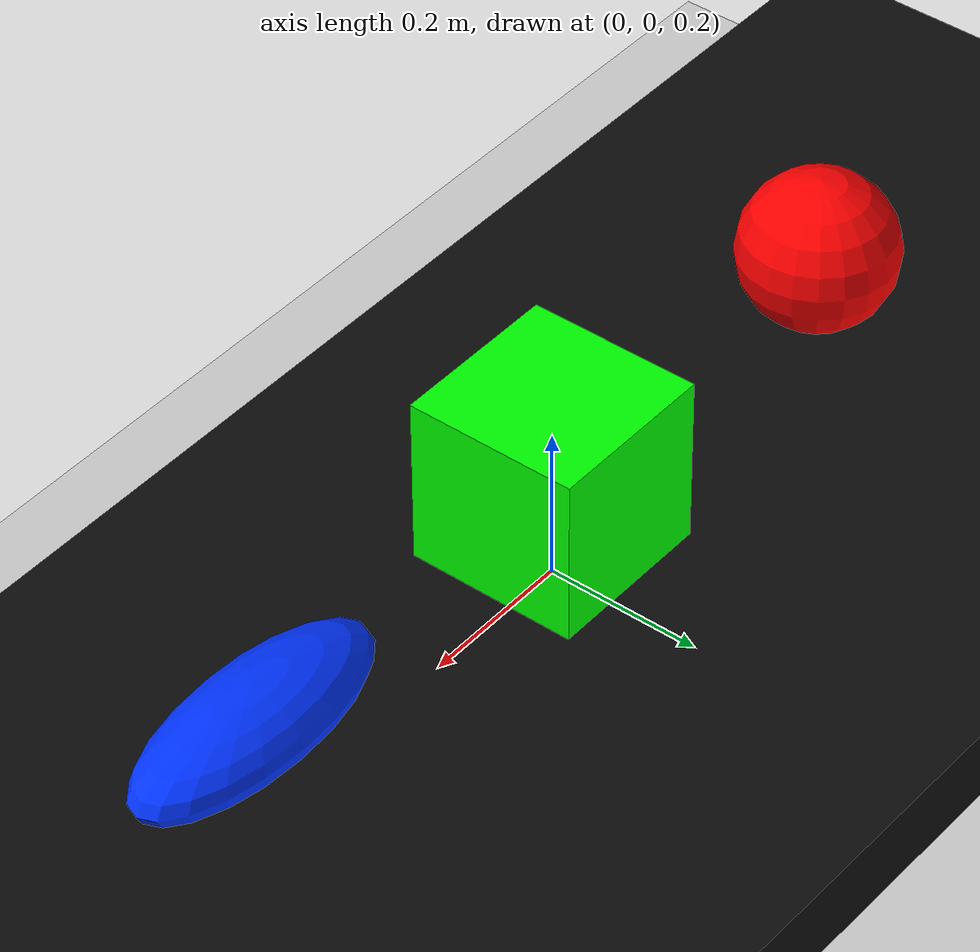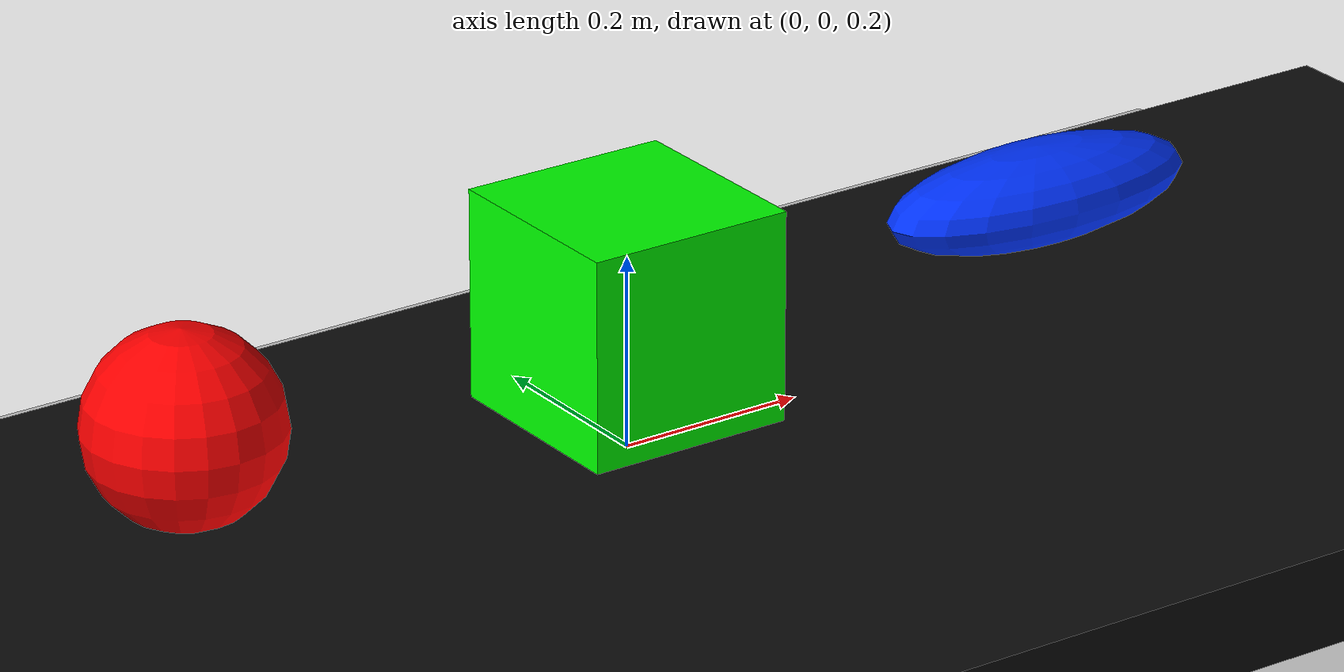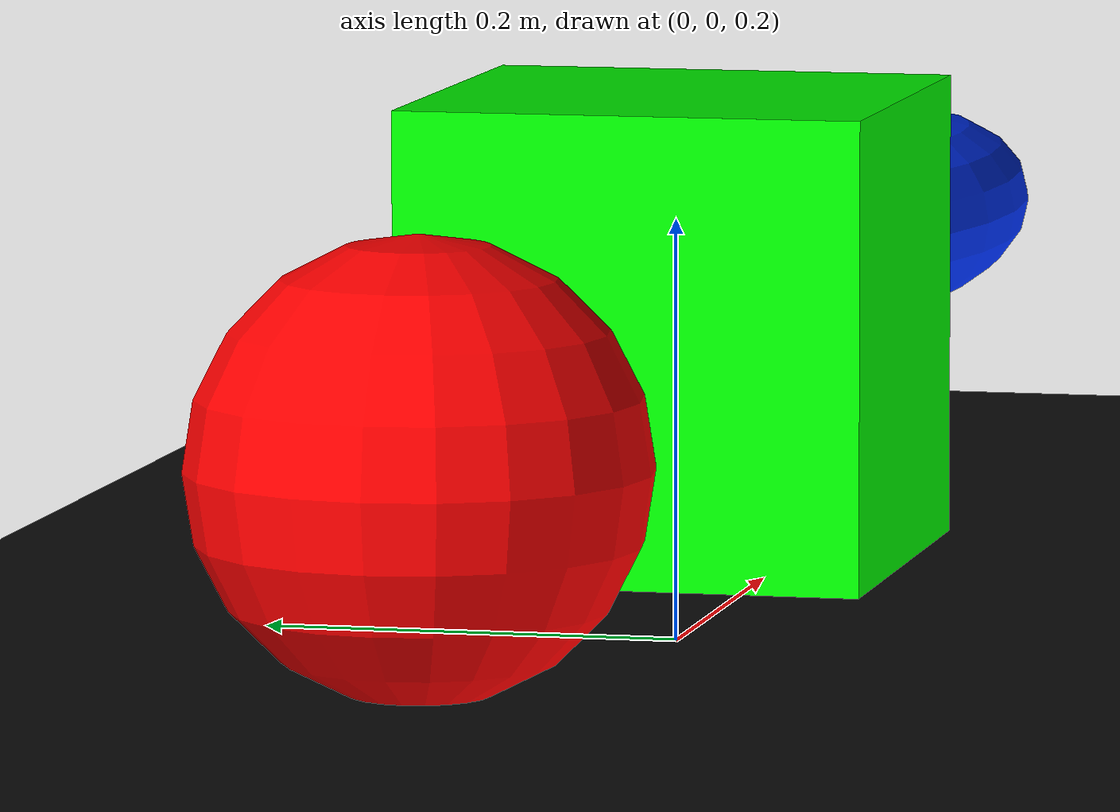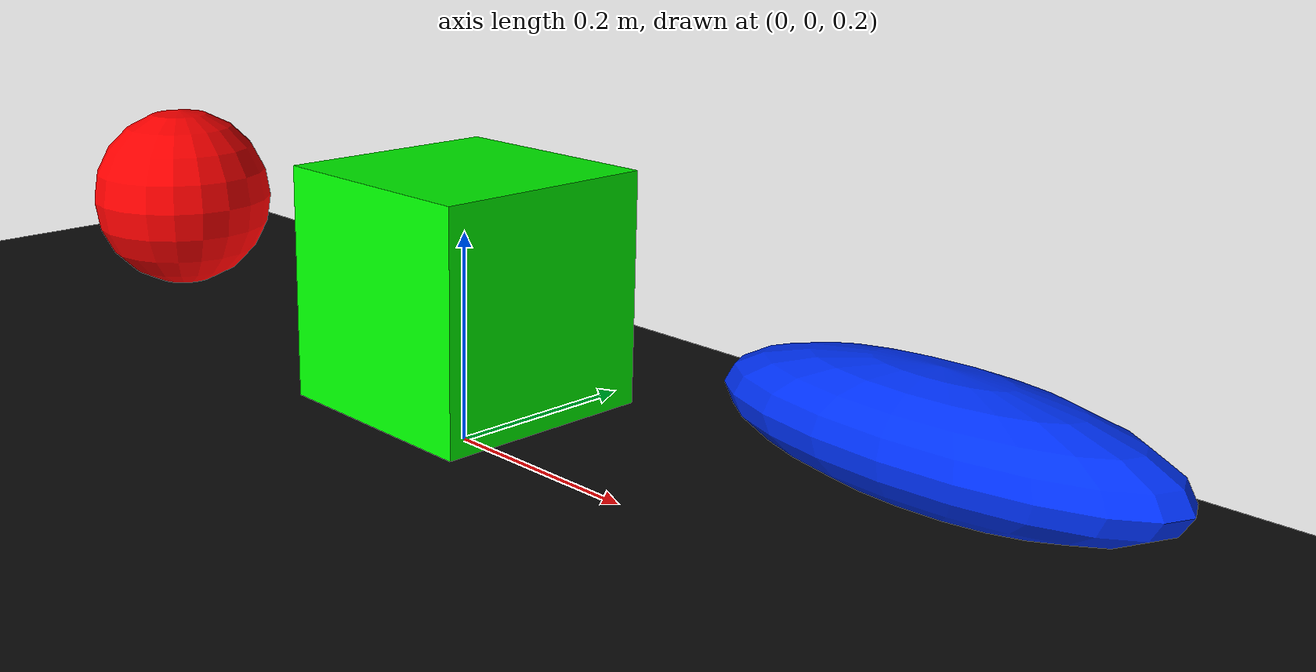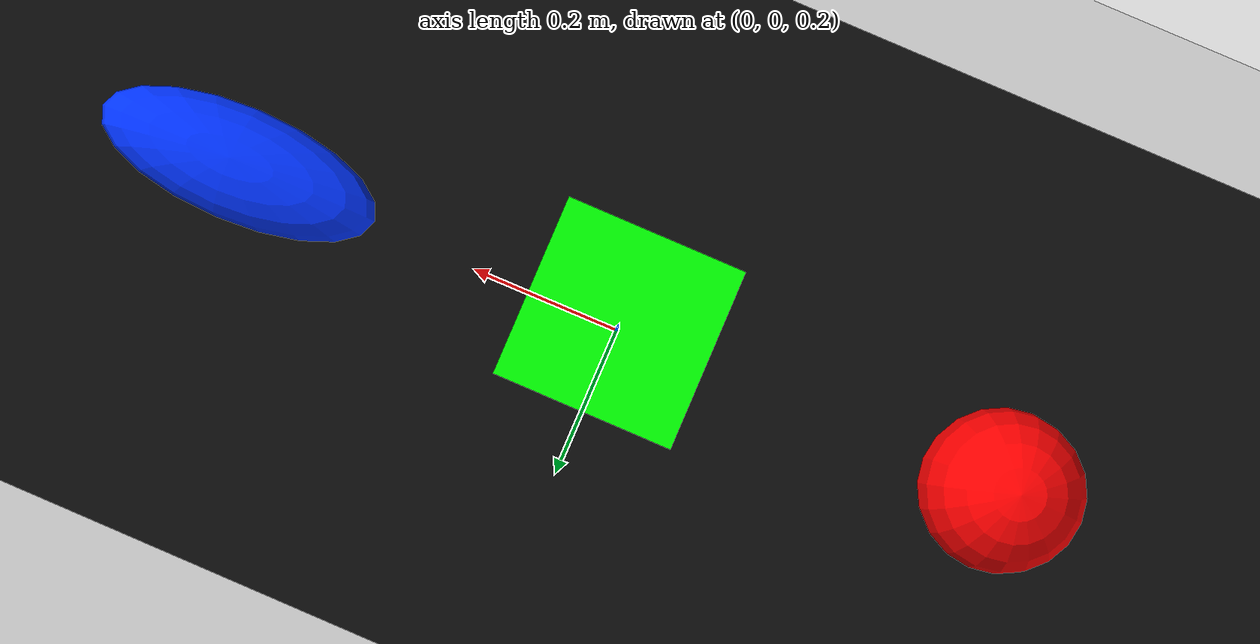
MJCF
<mujoco model="siminspect_scene">

    <compiler angle="degree"/>
    <option gravity="0 0 -9.81"/>

    <default>
        <geom density="300" friction="1 0.005 0.0001" condim="3"/>
    </default>

    <worldbody>
        <!-- Light -->
        <light name="main_light" pos="0 0 4" dir="0 0 -1"/>

        <!-- Camera -->

        <camera
    name="inspection_camera"
    pos="0 0 2.0"
    euler="0 0 0"
    fovy="45"/>

        <!-- Floor -->
        <geom
            name="floor"
            type="plane"
            size="5 5 0.1"
            rgba="0.8 0.8 0.8 1"/>

        <!-- Conveyor/platform -->
        <body name="conveyor" pos="0 0 0.1">
            <geom
                name="conveyor_belt"
                type="box"
                size="1.5 0.5 0.05"
                rgba="0.05 0.05 0.05 1"/>
        </body>

        <!-- Red apple -->
        <body name="red_apple" pos="-0.5 0 0.35">
            <freejoint name="red_apple_joint"/>
            <geom
                name="red_apple_geom"
                type="sphere"
                size="0.10"
                rgba="1 0 0 1"/>
        </body>

        <!-- Green box -->
        <body name="green_box" pos="0 0 0.35">
            <freejoint name="green_box_joint"/>
            <geom
                name="green_box_geom"
                type="box"
                size="0.11 0.11 0.11"
                rgba="0 1 0 1"/>
        </body>

        <!-- Blue fish -->
        <body name="blue_fish" pos="0.5 0 0.35">
            <freejoint name="blue_fish_joint"/>
            <geom
                name="blue_fish_geom"
                type="ellipsoid"
                size="0.18 0.07 0.05"
                rgba="0 0.2 1 1"/>
        </body>
    </worldbody>

</mujoco>
